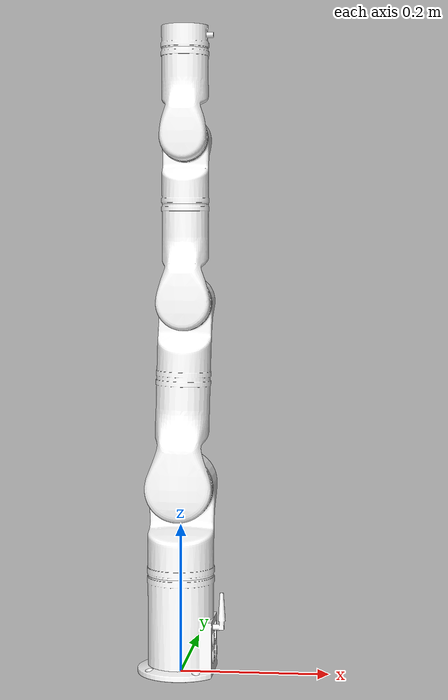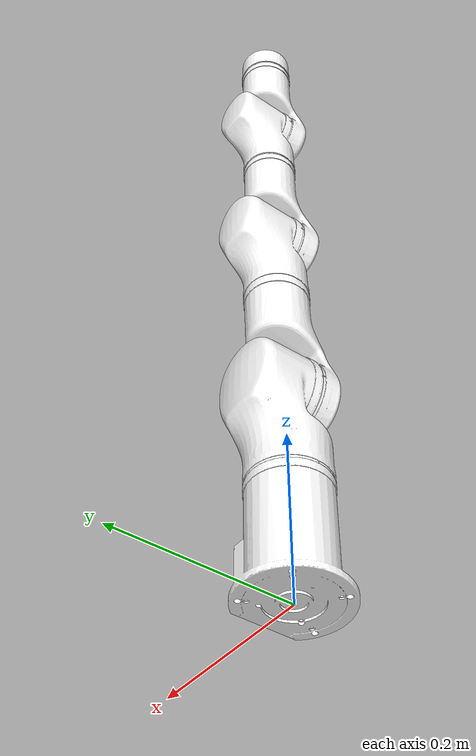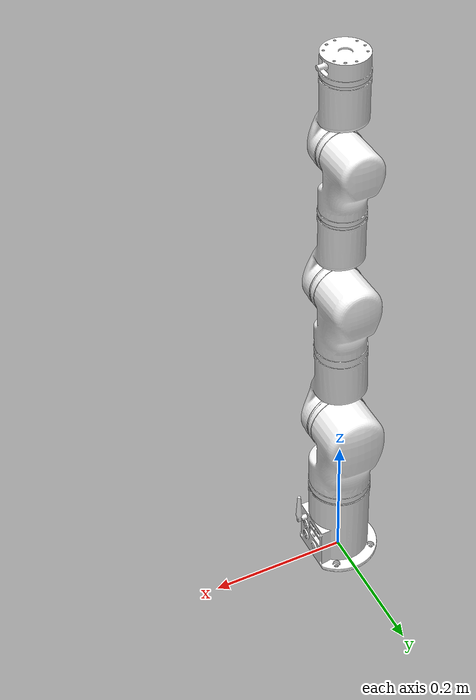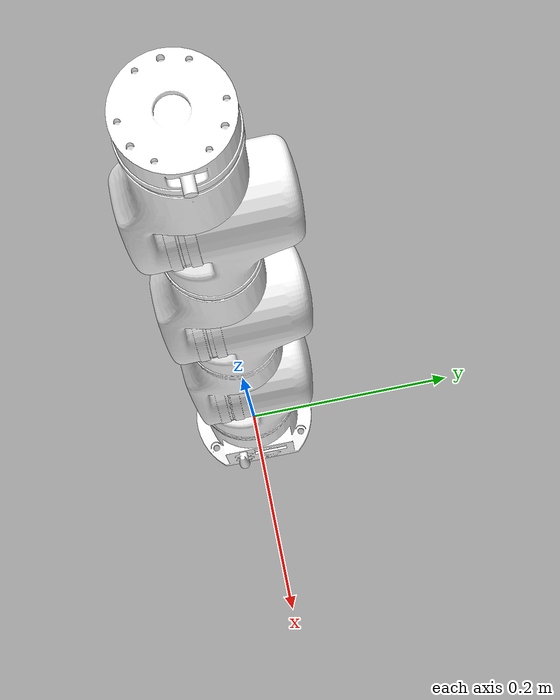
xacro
<?xml version="1.0" ?>
<!-- |    This document was autogenerated by xacro from RM_decription.urdf                  | -->
<!-- |    EDITING THIS FILE BY HAND IS NOT RECOMMENDED                                 | -->
<robot name="rm_description"   xmlns:xacro="http://www.ros.org/wiki/xacro">
<xacro:include filename="$(find rm_description)/urdf/rm.transmission.xacro"/>
<xacro:include filename="$(find rm_description)/urdf/rm.gazebo.xacro"/>
  <link
    name="base_link">
    <inertial>
      <origin
        xyz="-0.000109373565465087 -0.000540506855878586 0.0596939182288847"
        rpy="0 0 0" />
      <mass
        value="50" />
      <inertia
        ixx="0.000784258212393038"
        ixy="6.29959493193312E-06"
        ixz="-1.76459744676658E-05"
        iyy="0.000779239170957765"
        iyz="-8.63136641574899E-07"
        izz="0.000487751716575412" />
    </inertial>
    <visual>
      <origin
        xyz="0 0 0"
        rpy="0 0 0" />
      <geometry>
        <mesh
          filename="package://rm_description/meshes/base_link.STL" />
      </geometry>
      <material
        name="">
        <color
          rgba="1 1 1 1" />
      </material>
    </visual>
    <collision>
      <origin
        xyz="0 0 0"
        rpy="0 0 0" />
      <geometry>
        <mesh
          filename="package://rm_description/meshes/base_link.STL" />
      </geometry>
    </collision>
  </link>
  <link
    name="link1">
    <inertial>
      <origin
        xyz="1.03803520729029E-06 -0.0103990426169562 0.0743349525008567"
        rpy="0 0 0" />
      <mass
        value="0.215133901253052" />
      <inertia
        ixx="0.000738411845651515"
        ixy="4.9343358529989E-09"
        ixz="-7.40107563498747E-09"
        iyy="0.000752630863743101"
        iyz="8.29235260567527E-05"
        izz="0.000345883612905226" />
    </inertial>
    <visual>
      <origin
        xyz="0 0 0"
        rpy="0 0 0" />
      <geometry>
        <mesh
          filename="package://rm_description/meshes/link1.STL" />
      </geometry>
      <material
        name="">
        <color
          rgba="1 1 1 1" />
      </material>
    </visual>
    <collision>
      <origin
        xyz="0 0 0"
        rpy="0 0 0" />
      <geometry>
        <mesh
          filename="package://rm_description/meshes/link1.STL" />
      </geometry>
    </collision>
  </link>
  <joint
    name="joint1"
    type="revolute">
    <origin
      xyz="0 0 0.1327"
      rpy="3.4694E-18 2.4378E-13 -3.1416" />
    <parent
      link="base_link" />
    <child
      link="link1" />
    <axis
      xyz="0 0 1" />
    <limit
      lower="-3.05"
      upper="3.05"
      effort="0"
      velocity="0" />
  </joint>
  <link
    name="link2">
    <inertial>
      <origin
        xyz="0.125617616072843 0.00357568268785996 0.0132826613843138"
        rpy="0 0 0" />
      <mass
        value="0.283929826592835" />
      <inertia
        ixx="0.000411191576002741"
        ixy="-6.53114733016414E-05"
        ixz="-0.00050447716245518"
        iyy="0.00271431366843969"
        iyz="-1.42823833900128E-05"
        izz="0.00264679251140964" />
    </inertial>
    <visual>
      <origin
        xyz="0 0 0"
        rpy="0 0 0" />
      <geometry>
        <mesh
          filename="package://rm_description/meshes/link2.STL" />
      </geometry>
      <material
        name="">
        <color
          rgba="1 1 1 1" />
      </material>
    </visual>
    <collision>
      <origin
        xyz="0 0 0"
        rpy="0 0 0" />
      <geometry>
        <mesh
          filename="package://rm_description/meshes/link2.STL" />
      </geometry>
    </collision>
  </link>
  <joint
    name="joint2"
    type="revolute">
    <origin
      xyz="0 0.01355 0.1193"
      rpy="-3.1343 -1.5708 -1.5562" />
    <parent
      link="link1" />
    <child
      link="link2" />
    <axis
      xyz="0 0 1" />
    <limit
      lower="-2"
      upper="2"
      effort="0"
      velocity="0" />
  </joint>
  <link
    name="link3">
    <inertial>
      <origin
        xyz="-2.62322173649743E-07 -0.0531866163941078 0.00185294381389689"
        rpy="0 0 0" />
      <mass
        value="0.111073907035842" />
      <inertia
        ixx="0.00033047679713022"
        ixy="1.31716200247089E-09"
        ixz="-4.56890740152993E-10"
        iyy="0.000104053844810698"
        iyz="7.71086571035923E-05"
        izz="0.000321094433322306" />
    </inertial>
    <visual>
      <origin
        xyz="0 0 0"
        rpy="0 0 0" />
      <geometry>
        <mesh
          filename="package://rm_description/meshes/link3.STL" />
      </geometry>
      <material
        name="">
        <color
          rgba="1 1 1 1" />
      </material>
    </visual>
    <collision>
      <origin
        xyz="0 0 0"
        rpy="0 0 0" />
      <geometry>
        <mesh
          filename="package://rm_description/meshes/link3.STL" />
      </geometry>
    </collision>
  </link>
  <joint
    name="joint3"
    type="revolute">
    <origin
      xyz="0.2464 0.007 0.0015"
      rpy="-1.7347E-18 -5.5511E-17 1.5708" />
    <parent
      link="link2" />
    <child
      link="link3" />
    <axis
      xyz="0 0 1" />
    <limit
      lower="-2"
      upper="2"
      effort="0"
      velocity="0" />
  </joint>
  <link
    name="link4">
    <inertial>
      <origin
        xyz="-1.89389405602647E-07 0.0125575326860273 0.0583180851477226"
        rpy="0 0 0" />
      <mass
        value="0.0997648971440612" />
      <inertia
        ixx="0.000191682166188519"
        ixy="1.01339370300543E-09"
        ixz="8.67961926602371E-10"
        iyy="0.000177823631535319"
        iyz="-2.99893599167277E-05"
        izz="9.86902095260074E-05" />
    </inertial>
    <visual>
      <origin
        xyz="0 0 0"
        rpy="0 0 0" />
      <geometry>
        <mesh
          filename="package://rm_description/meshes/link4.STL" />
      </geometry>
      <material
        name="">
        <color
          rgba="1 1 1 1" />
      </material>
    </visual>
    <collision>
      <origin
        xyz="0 0 0"
        rpy="0 0 0" />
      <geometry>
        <mesh
          filename="package://rm_description/meshes/link4.STL" />
      </geometry>
    </collision>
  </link>
  <joint
    name="joint4"
    type="revolute">
    <origin
      xyz="0 -0.1304 0.01745"
      rpy="1.5708 -5.5511E-17 1.7347E-18" />
    <parent
      link="link3" />
    <child
      link="link4" />
    <axis
      xyz="0 0 1" />
    <limit
      lower="-3.05"
      upper="3.05"
      effort="0"
      velocity="0" />
  </joint>
  <link
    name="link5">
    <inertial>
      <origin
        xyz="-2.3157236272997E-07 -0.0507443613513162 0.00177089430075761"
        rpy="0 0 0" />
      <mass
        value="0.0957664896685306" />
      <inertia
        ixx="0.000228496433142371"
        ixy="-5.7261396795782E-09"
        ixz="1.54923483788963E-09"
        iyy="8.10391564318016E-05"
        iyz="5.22320419179966E-05"
        izz="0.00021939996729031" />
    </inertial>
    <visual>
      <origin
        xyz="0 0 0"
        rpy="0 0 0" />
      <geometry>
        <mesh
          filename="package://rm_description/meshes/link5.STL" />
      </geometry>
      <material
        name="">
        <color
          rgba="1 1 1 1" />
      </material>
    </visual>
    <collision>
      <origin
        xyz="0 0 0"
        rpy="0 0 0" />
      <geometry>
        <mesh
          filename="package://rm_description/meshes/link5.STL" />
      </geometry>
    </collision>
  </link>
  <joint
    name="joint5"
    type="revolute">
    <origin
      xyz="0 -0.0142 0.0872"
      rpy="-1.5708 1.7347E-18 5.5511E-17" />
    <parent
      link="link4" />
    <child
      link="link5" />
    <axis
      xyz="0 0 1" />
    <limit
      lower="-2"
      upper="2"
      effort="0"
      velocity="0" />
  </joint>
  <link
    name="link6">
    <inertial>
      <origin
        xyz="-0.000457792901041587 8.72837963215023E-05 -0.012860781989493"
        rpy="0 0 0" />
      <mass
        value="0.0454115343474848" />
      <inertia
        ixx="1.92594513199535E-05"
        ixy="3.54327832160295E-08"
        ixz="1.83353519645419E-08"
        iyy="1.84993535241476E-05"
        iyz="-4.30694743278975E-08"
        izz="3.03164748974575E-05" />
    </inertial>
    <visual>
      <origin
        xyz="0 0 0"
        rpy="0 0 0" />
      <geometry>
        <mesh
          filename="package://rm_description/meshes/link6.STL" />
      </geometry>
      <material
        name="">
        <color
          rgba="1 1 1 1" />
      </material>
    </visual>
    <collision>
      <origin
        xyz="0 0 0"
        rpy="0 0 0" />
      <geometry>
        <mesh
          filename="package://rm_description/meshes/link6.STL" />
      </geometry>
    </collision>
  </link>
  <joint
    name="joint6"
    type="revolute">
    <origin
      xyz="0 -0.1471 0.0146"
      rpy="1.5708 -7.8126E-13 -2.4378E-13" />
    <parent
      link="link5" />
    <child
      link="link6" />
    <axis
      xyz="0 0 1" />
    <limit
      lower="-6.28"
      upper="6.28"
      effort="0"
      velocity="0" />
  </joint>
</robot>
